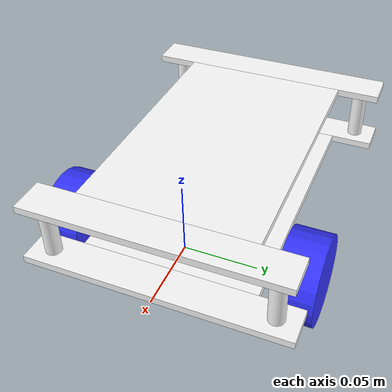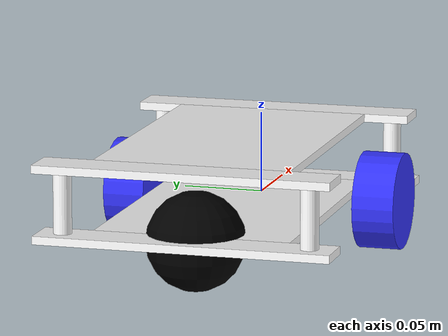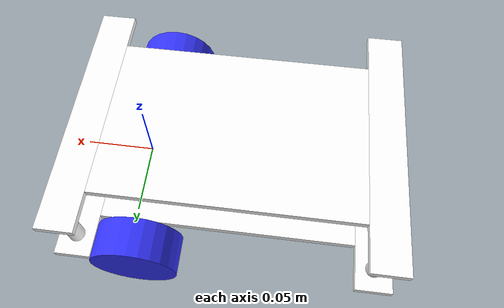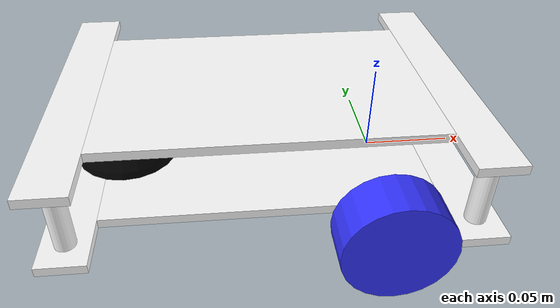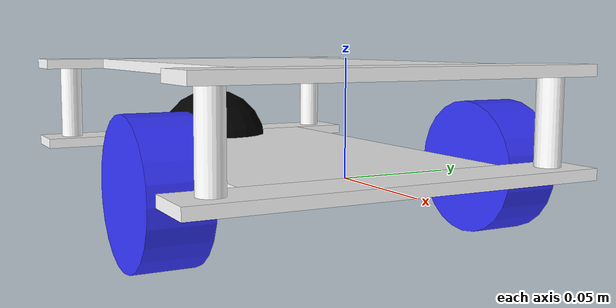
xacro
<?xml version="1.0"?>
<robot xmlns:xacro="http://www.ros.org/wiki/xacro" >

    <xacro:include filename ="inertial_macros.xacro"/>

    <material name ="white">
        <color rgba="1 1 1 1" />
    </material>

    <material name ="orange">
        <color rgba="1 0.3 0.1 1" />
    </material>

    <material name ="blue">
        <color rgba="0.2 0.2 1 1" />
    </material>

    <material name ="black">
        <color rgba="0 0 0 1" />
    </material>

    <!--BASE link-->

    <link name="base_link">

    </link>

    <!--Midle Chassis link-->
    <joint name="chassis_joint" type="fixed">
        <parent link= "base_link"/>
        <child link="midle_chassis"/>
        <origin xyz="-0.155 0 0"/>
    </joint>

    <link name="midle_chassis">
        <visual>
            <origin xyz="0.09 0 0.0025"/>
            <geometry>
                <box size="0.18 0.12 0.005"/>
            </geometry>
            <material name="white"/>
        </visual>
        <collision>
            <origin xyz="0.09 0 0.0025"/>
            <geometry>
                <box size="0.18 0.12 0.005"/>
            </geometry>
        </collision>
        <xacro:inertial_box mass="0.015" x="0.18" y="0.12" z="0.005">
            <origin xyz= "0.09 0 0.0025" rpy="0 0 0"/>
        </xacro:inertial_box>
    </link>

    <!--Back Chassis Link-->

    <joint name="chassis_joint_2" type="fixed">
        <parent link= "midle_chassis"/>
        <child link="back_chassis"/>
        <origin xyz="-0.025 0 0"/>
    </joint>

    <link name="back_chassis">
        <visual>
            <origin xyz="0.0125 0 0.0025"/>
            <geometry>
                <box size="0.025 0.18 0.005"/>
            </geometry>
            <material name="white"/>
        </visual>
        <collision>
            <origin xyz="0.0125 0 0.0025"/>
            <geometry>
                <box size="0.025 0.18 0.005"/>
            </geometry>
        </collision>
        <xacro:inertial_box mass="0.005" x="0.025" y="0.18" z="0.005">
            <origin xyz= "0.0125 0 0.0025" rpy="0 0 0"/>
        </xacro:inertial_box>
    </link>

    <!--Front Chassis Link-->

    <joint name="chassis_joint_3" type="fixed">
        <parent link= "midle_chassis"/>
        <child link="front_chassis"/>
        <origin xyz="0.18 0 0"/>
    </joint>

    <link name="front_chassis">
        <visual>
            <origin xyz="0.0125 0 0.0025"/>
            <geometry>
                <box size="0.025 0.18 0.005"/>
            </geometry>
            <material name="white"/>
        </visual>
        <collision>
            <origin xyz="0.0125 0 0.0025"/>
            <geometry>
                <box size="0.025 0.175 0.005"/>
            </geometry>
        </collision>
        <xacro:inertial_box mass="0.005" x="0.025" y="0.18" z="0.005">
            <origin xyz= "0.0125 0 0.0025" rpy="0 0 0"/>
        </xacro:inertial_box>
    </link>

    <!--front_Right_spacer-->
    <joint name="Spacer_joint_1" type="fixed">
        <parent link="front_chassis"/>
        <child link="Spacer_1"/>
        <origin xyz="0.0125 0.075 0"/>
    </joint>

    <link name="Spacer_1">
        <visual>
            <origin xyz="0 0 0.0225"/>
            <geometry>
                <cylinder radius = "0.0055" length="0.04"/>
            </geometry>
            <material name="white"/>
        </visual>
        <collision>
            <origin xyz="0 0 0.0225"/>
            <geometry>
                <cylinder radius = "0.0055" length="0.04"/>
            </geometry>
        </collision>
        <xacro:inertial_cylinder mass="0.005" length="0.04" radius="0.0055">
            <origin xyz= "0 0 0.0225" rpy="0 0 0"/>
        </xacro:inertial_cylinder>
    </link>

    <!--front_Left_spacer-->
    <joint name="Spacer_joint_2" type="fixed">
        <parent link="front_chassis"/>
        <child link="Spacer_2"/>
        <origin xyz="0.0125 -0.075 0"/>
    </joint>

    <link name="Spacer_2">
        <visual>
            <origin xyz="0 0 0.0225"/>
            <geometry>
                <cylinder radius = "0.0055" length="0.04"/>
            </geometry>
            <material name="white"/>
        </visual>
        <collision>
            <origin xyz="0 0 0.0225"/>
            <geometry>
                <cylinder radius = "0.0055" length="0.04"/>
            </geometry>
        </collision>
        <xacro:inertial_cylinder mass="0.005" length="0.04" radius="0.0055">
            <origin xyz= "0 0 0.0225" rpy="0 0 0"/>
        </xacro:inertial_cylinder>
    </link>

    <!--Back_Right_spacer-->
    <joint name="Spacer_joint_3" type="fixed">
        <parent link="back_chassis"/>
        <child link="Spacer_3"/>
        <origin xyz="0.0125 0.075 0"/>
    </joint>

    <link name="Spacer_3">
        <visual>
            <origin xyz="0 0 0.0225"/>
            <geometry>
                <cylinder radius = "0.0055" length="0.04"/>
            </geometry>
            <material name="white"/>
        </visual>
        <collision>
            <origin xyz="0 0 0.0225"/>
            <geometry>
                <cylinder radius = "0.0055" length="0.04"/>
            </geometry>
        </collision>
        <xacro:inertial_cylinder mass="0.005" length="0.04" radius="0.0055">
            <origin xyz= "0 0 0.0225" rpy="0 0 0"/>
        </xacro:inertial_cylinder>
    </link>

    <!--back_left_spacer-->
    <joint name="Spacer_joint_4" type="fixed">
        <parent link="back_chassis"/>
        <child link="Spacer_4"/>
        <origin xyz="0.0125 -0.075 0"/>
    </joint>

    <link name="Spacer_4">
        <visual>
            <origin xyz="0 0 0.0225"/>
            <geometry>
                <cylinder radius = "0.0055" length="0.04"/>
            </geometry>
            <material name="white"/>
        </visual>
        <collision>
            <origin xyz="0 0 0.0225"/>
            <geometry>
                <cylinder radius = "0.0055" length="0.04"/>
            </geometry>
        </collision>
        <xacro:inertial_cylinder mass="0.005" length="0.04" radius="0.0055">
            <origin xyz= "0 0 0.0225" rpy="0 0 0"/>
        </xacro:inertial_cylinder>
    </link>

    <!--haut du robot-->
    <!--Up Midle Chassis link-->
    <joint name="chassis_joint_4" type="fixed">
        <parent link= "midle_chassis"/>
        <child link="midle_up_chassis"/>
        <origin xyz="0 0 0.0425"/>
    </joint>

    <link name="midle_up_chassis">
        <visual>
            <origin xyz="0.09 0 0.0025"/>
            <geometry>
                <box size="0.18 0.12 0.005"/>
            </geometry>
            <material name="white"/>
        </visual>
        <collision>
            <origin xyz="0.09 0 0.0025"/>
            <geometry>
                <box size="0.18 0.12 0.005"/>
            </geometry>
        </collision>
        <xacro:inertial_box mass="0.015" x="0.18" y="0.12" z="0.005">
            <origin xyz= "0.09 0 0.0025" rpy="0 0 0"/>
        </xacro:inertial_box>
    </link>

    <!--Back Chassis Link-->

    <joint name="chassis_joint_5" type="fixed">
        <parent link= "midle_up_chassis"/>
        <child link="back_up_chassis"/>
        <origin xyz="-0.025 0 0"/>
    </joint>

    <link name="back_up_chassis">
        <visual>
            <origin xyz="0.0125 0 0.0025"/>
            <geometry>
                <box size="0.025 0.18 0.005"/>
            </geometry>
            <material name="white"/>
        </visual>
        <collision>
            <origin xyz="0.0125 0 0.0025"/>
            <geometry>
                <box size="0.025 0.18 0.005"/>
            </geometry>
        </collision>
        <xacro:inertial_box mass="0.005" x="0.025" y="0.18" z="0.005">
            <origin xyz= "0.0125 0 0.0025" rpy="0 0 0"/>
        </xacro:inertial_box>
    </link>

    <!--Front Chassis Link-->

    <joint name="chassis_joint_6" type="fixed">
        <parent link= "midle_up_chassis"/>
        <child link="front_up_chassis"/>
        <origin xyz="0.18 0 0"/>
    </joint>

    <link name="front_up_chassis">
        <visual>
            <origin xyz="0.0125 0 0.0025"/>
            <geometry>
                <box size="0.025 0.175 0.005"/>
            </geometry>
            <material name="white"/>
        </visual>
        <collision>
            <origin xyz="0.0125 0 0.0025"/>
            <geometry>
                <box size="0.025 0.175 0.005"/>
            </geometry>
        </collision>
        <xacro:inertial_box mass="0.005" x="0.025" y="0.18" z="0.005">
            <origin xyz= "0.0125 0 0.0025" rpy="0 0 0"/>
        </xacro:inertial_box>
    </link>

    <!-- Left Wheel Link-->

    <joint name="left_wheel_joint" type="continuous">
        <parent link= "base_link"/>
        <child link="left_wheel"/>
        <origin xyz="-0.0055 0.08 0" rpy="-${pi/2} 0 0"/>
        <axis xyz="0 0 1"/>
        <limit effort="100" velocity="10.0"/>
        <dynamics damping="0.1" friction="0.1"/>
    </joint>

    <link name="left_wheel">
        <visual>
            <geometry>
                <cylinder radius="0.03" length="0.026"/>
            </geometry>
            <material name="blue"/>
        </visual>
        <collision>
            <geometry>
                <cylinder radius="0.03" length="0.026"/>
            </geometry>
        </collision>
        <xacro:inertial_cylinder mass="0.02" length="0.026" radius="0.03">
            <origin xyz= "0 0 0" rpy="0 0 0"/>
        </xacro:inertial_cylinder>
    </link>

    <!-- Right Wheel Link-->

    <joint name="right_wheel_joint" type="continuous">
        <parent link= "base_link"/>
        <child link="right_wheel"/>
        <origin xyz="-0.0055 -0.08 0" rpy="${pi/2} 0 0"/>
        <axis xyz="0 0 -1"/>
        <limit effort="100" velocity="10.0"/>
        <dynamics damping="0.1" friction="0.1"/>
    </joint>

    <link name="right_wheel">
        <visual>
            <geometry>
                <cylinder radius="0.03" length="0.026"/>
            </geometry>
            <material name="blue"/>
        </visual>
        <collision>
            <geometry>
                <cylinder radius="0.03" length="0.026"/>
            </geometry>
        </collision>
        <xacro:inertial_cylinder mass="0.02" length="0.026" radius="0.03">
            <origin xyz= "0 0 0" rpy="0 0 0"/>
        </xacro:inertial_cylinder>
    </link>

    <!--Caster Wheel Link -->
    <joint name="caster_wheel_joint" type="fixed">
        <parent link="midle_chassis"/>
        <child link="caster_wheel"/>
        <origin xyz="0.01 0 0"/>
    </joint>

    <link name="caster_wheel">
        <visual>
            <geometry>
                <sphere radius="0.03"/>
            </geometry>
            <material name="black"/>
        </visual>
        <collision>
            <geometry>
                <sphere radius="0.03"/>
            </geometry>
        </collision>
        <xacro:inertial_sphere mass="0.02" radius="0.03">
            <origin xyz="0 0 0" rpy="0 0 0"/>
        </xacro:inertial_sphere>
    </link>

</robot>
